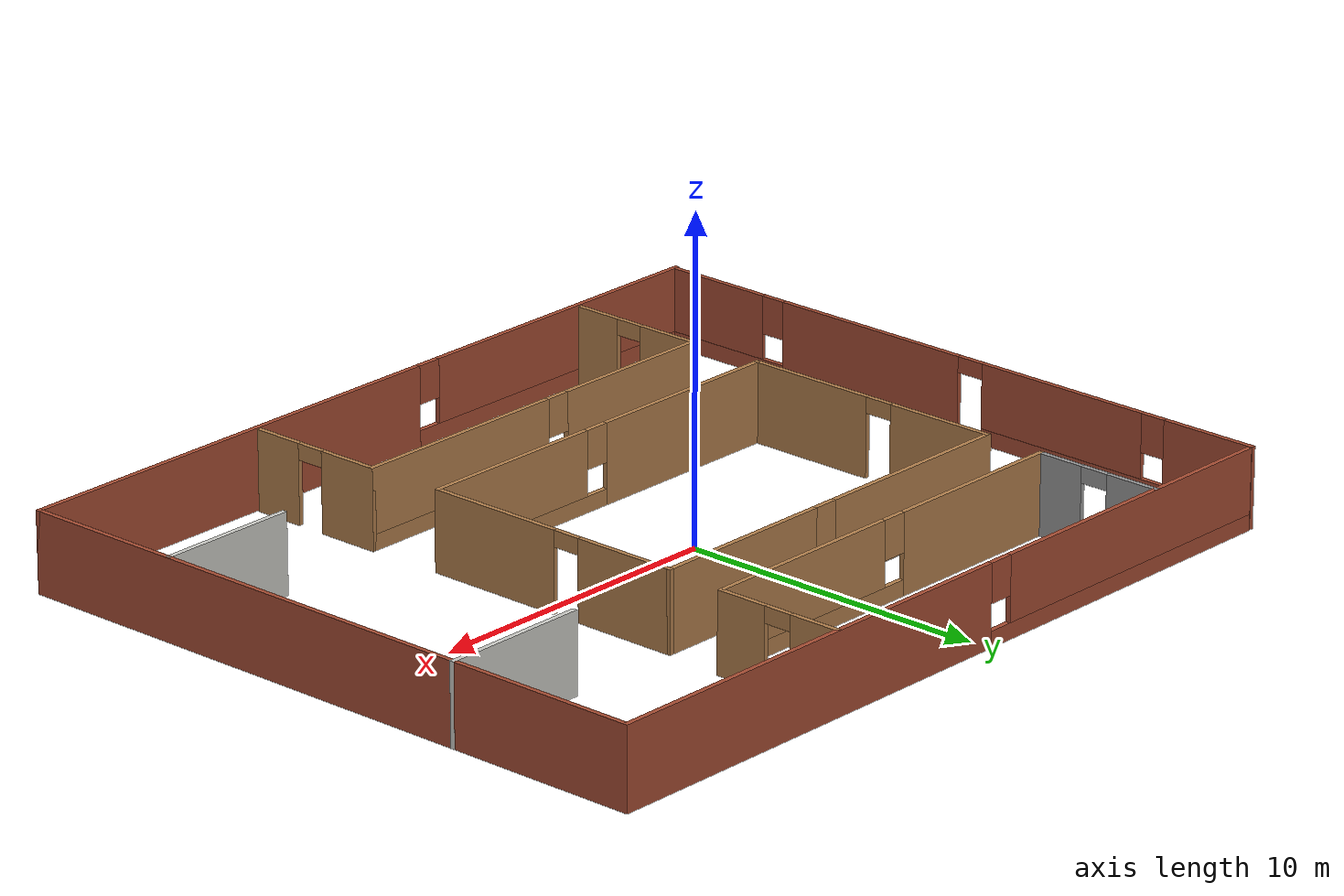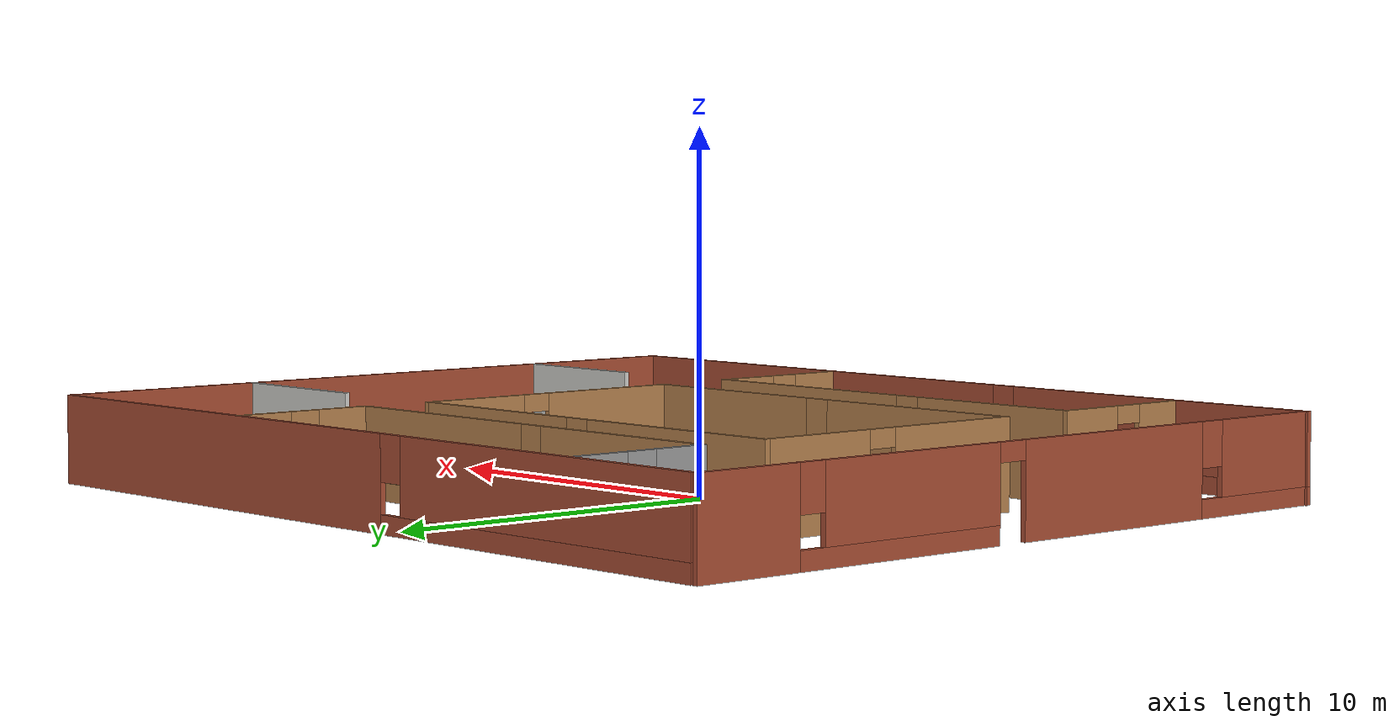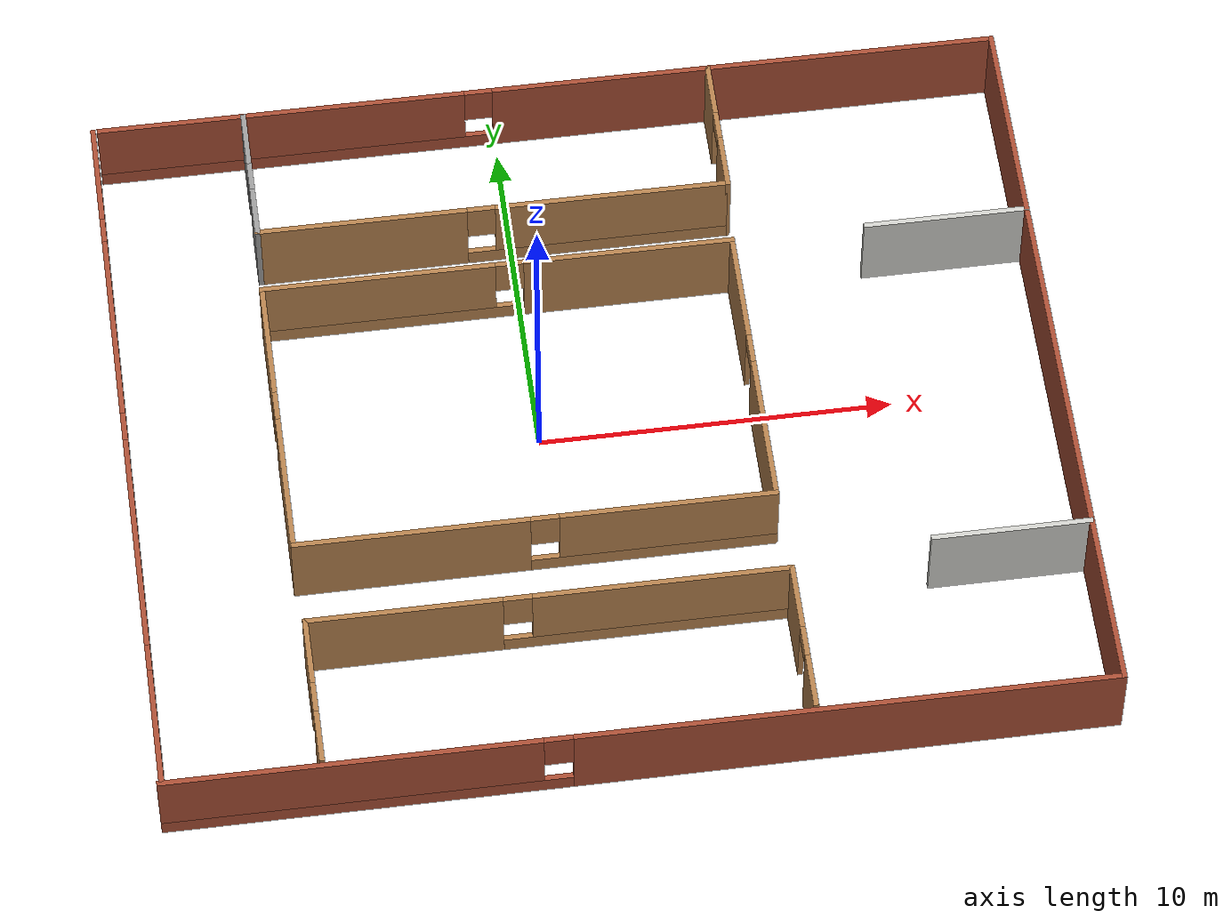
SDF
<?xml version='1.0'?>
<sdf version='1.6'>
  <model name='newworld'>
    <pose frame=''>1.44704 -0.283825 0 0 -0 0</pose>
    <link name='Wall_13'>
      <pose frame=''>4.60647 0.466552 0 0 -0 1.5708</pose>
      <visual name='Wall_13_Visual_0'>
        <pose frame=''>-2.13756 0 1.25 0 -0 0</pose>
        <geometry>
          <box>
            <size>4.47488 0.15 2.5</size>
          </box>
        </geometry>
        <material>
          <script>
            <uri>file://media/materials/scripts/gazebo.material</uri>
            <name>Gazebo/Wood</name>
          </script>
          <ambient>0.996078 0.47451 0.0196078 1</ambient>
        </material>
        <meta>
          <layer>0</layer>
        </meta>
      </visual>
      <collision name='Wall_13_Collision_0'>
        <geometry>
          <box>
            <size>4.47488 0.15 2.5</size>
          </box>
        </geometry>
        <pose frame=''>-2.13756 0 1.25 0 -0 0</pose>
      </collision>
      <visual name='Wall_13_Visual_1'>
        <pose frame=''>2.68744 0 1.25 0 -0 0</pose>
        <geometry>
          <box>
            <size>3.37512 0.15 2.5</size>
          </box>
        </geometry>
        <material>
          <script>
            <uri>file://media/materials/scripts/gazebo.material</uri>
            <name>Gazebo/Wood</name>
          </script>
          <ambient>0.996078 0.47451 0.0196078 1</ambient>
        </material>
        <meta>
          <layer>0</layer>
        </meta>
      </visual>
      <collision name='Wall_13_Collision_1'>
        <geometry>
          <box>
            <size>3.37512 0.15 2.5</size>
          </box>
        </geometry>
        <pose frame=''>2.68744 0 1.25 0 -0 0</pose>
      </collision>
      <visual name='Wall_13_Visual_2'>
        <pose frame=''>0.549876 0 2.25 0 -0 0</pose>
        <geometry>
          <box>
            <size>0.9 0.15 0.5</size>
          </box>
        </geometry>
        <material>
          <script>
            <uri>file://media/materials/scripts/gazebo.material</uri>
            <name>Gazebo/Wood</name>
          </script>
          <ambient>0.996078 0.47451 0.0196078 1</ambient>
        </material>
        <meta>
          <layer>0</layer>
        </meta>
      </visual>
      <collision name='Wall_13_Collision_2'>
        <geometry>
          <box>
            <size>0.9 0.15 0.5</size>
          </box>
        </geometry>
        <pose frame=''>0.549876 0 2.25 0 -0 0</pose>
      </collision>
    </link>
    <link name='Wall_14'>
      <pose frame=''>-2.06853 4.76655 0 0 -0 3.14159</pose>
      <visual name='Wall_14_Visual_0'>
        <pose frame=''>-3.73997 0 1.25 0 -0 0</pose>
        <geometry>
          <box>
            <size>6.02005 0.15 2.5</size>
          </box>
        </geometry>
        <material>
          <script>
            <uri>file://media/materials/scripts/gazebo.material</uri>
            <name>Gazebo/Wood</name>
          </script>
          <ambient>0.996078 0.47451 0.0196078 1</ambient>
        </material>
        <meta>
          <layer>0</layer>
        </meta>
      </visual>
      <collision name='Wall_14_Collision_0'>
        <geometry>
          <box>
            <size>6.02005 0.15 2.5</size>
          </box>
        </geometry>
        <pose frame=''>-3.73997 0 1.25 0 -0 0</pose>
      </collision>
      <visual name='Wall_14_Visual_1'>
        <pose frame=''>3.01003 0 0.25 0 -0 0</pose>
        <geometry>
          <box>
            <size>7.47995 0.15 0.5</size>
          </box>
        </geometry>
        <material>
          <script>
            <uri>file://media/materials/scripts/gazebo.material</uri>
            <name>Gazebo/Wood</name>
          </script>
          <ambient>0.996078 0.47451 0.0196078 1</ambient>
        </material>
        <meta>
          <layer>0</layer>
        </meta>
      </visual>
      <collision name='Wall_14_Collision_1'>
        <geometry>
          <box>
            <size>7.47995 0.15 0.5</size>
          </box>
        </geometry>
        <pose frame=''>3.01003 0 0.25 0 -0 0</pose>
      </collision>
      <visual name='Wall_14_Visual_2'>
        <pose frame=''>3.41003 0 1.5 0 -0 0</pose>
        <geometry>
          <box>
            <size>6.67995 0.15 2</size>
          </box>
        </geometry>
        <material>
          <script>
            <uri>file://media/materials/scripts/gazebo.material</uri>
            <name>Gazebo/Wood</name>
          </script>
          <ambient>0.996078 0.47451 0.0196078 1</ambient>
        </material>
        <meta>
          <layer>0</layer>
        </meta>
      </visual>
      <collision name='Wall_14_Collision_2'>
        <geometry>
          <box>
            <size>6.67995 0.15 2</size>
          </box>
        </geometry>
        <pose frame=''>3.41003 0 1.5 0 -0 0</pose>
      </collision>
      <visual name='Wall_14_Visual_3'>
        <pose frame=''>-0.329949 0 1.9 0 -0 0</pose>
        <geometry>
          <box>
            <size>0.8 0.15 1.2</size>
          </box>
        </geometry>
        <material>
          <script>
            <uri>file://media/materials/scripts/gazebo.material</uri>
            <name>Gazebo/Wood</name>
          </script>
          <ambient>0.996078 0.47451 0.0196078 1</ambient>
        </material>
        <meta>
          <layer>0</layer>
        </meta>
      </visual>
      <collision name='Wall_14_Collision_3'>
        <geometry>
          <box>
            <size>0.8 0.15 1.2</size>
          </box>
        </geometry>
        <pose frame=''>-0.329949 0 1.9 0 -0 0</pose>
      </collision>
    </link>
    <link name='Wall_2'>
      <collision name='Wall_2_Collision'>
        <geometry>
          <box>
            <size>21.8915 0.15 2.5</size>
          </box>
        </geometry>
        <pose frame=''>0 0 1.25 0 -0 0</pose>
      </collision>
      <visual name='Wall_2_Visual'>
        <pose frame=''>0 0 1.25 0 -0 0</pose>
        <geometry>
          <box>
            <size>21.8915 0.15 2.5</size>
          </box>
        </geometry>
        <material>
          <script>
            <uri>file://media/materials/scripts/gazebo.material</uri>
            <name>Gazebo/Bricks</name>
          </script>
          <ambient>1 1 1 1</ambient>
        </material>
        <meta>
          <layer>0</layer>
        </meta>
      </visual>
      <pose frame=''>13.0496 0 0 0 0 -1.5708</pose>
    </link>
    <link name='Wall_21'>
      <pose frame=''>-8.67277 -8.48349 0 0 -0 1.5708</pose>
      <visual name='Wall_21_Visual_0'>
        <pose frame=''>-1.47222 0 1.25 0 -0 0</pose>
        <geometry>
          <box>
            <size>1.55555 0.15 2.5</size>
          </box>
        </geometry>
        <material>
          <script>
            <uri>file://media/materials/scripts/gazebo.material</uri>
            <name>Gazebo/Wood</name>
          </script>
          <ambient>1 1 1 1</ambient>
        </material>
        <meta>
          <layer>0</layer>
        </meta>
      </visual>
      <collision name='Wall_21_Collision_0'>
        <geometry>
          <box>
            <size>1.55555 0.15 2.5</size>
          </box>
        </geometry>
        <pose frame=''>-1.47222 0 1.25 0 -0 0</pose>
      </collision>
      <visual name='Wall_21_Visual_1'>
        <pose frame=''>1.22778 0 1.25 0 -0 0</pose>
        <geometry>
          <box>
            <size>2.04445 0.15 2.5</size>
          </box>
        </geometry>
        <material>
          <script>
            <uri>file://media/materials/scripts/gazebo.material</uri>
            <name>Gazebo/Wood</name>
          </script>
          <ambient>1 1 1 1</ambient>
        </material>
        <meta>
          <layer>0</layer>
        </meta>
      </visual>
      <collision name='Wall_21_Collision_1'>
        <geometry>
          <box>
            <size>2.04445 0.15 2.5</size>
          </box>
        </geometry>
        <pose frame=''>1.22778 0 1.25 0 -0 0</pose>
      </collision>
      <visual name='Wall_21_Visual_2'>
        <pose frame=''>-0.244446 0 2.25 0 -0 0</pose>
        <geometry>
          <box>
            <size>0.9 0.15 0.5</size>
          </box>
        </geometry>
        <material>
          <script>
            <uri>file://media/materials/scripts/gazebo.material</uri>
            <name>Gazebo/Wood</name>
          </script>
          <ambient>1 1 1 1</ambient>
        </material>
        <meta>
          <layer>0</layer>
        </meta>
      </visual>
      <collision name='Wall_21_Collision_2'>
        <geometry>
          <box>
            <size>0.9 0.15 0.5</size>
          </box>
        </geometry>
        <pose frame=''>-0.244446 0 2.25 0 -0 0</pose>
      </collision>
    </link>
    <link name='Wall_22'>
      <pose frame=''>-1.99777 -6.30849 0 0 -0 0</pose>
      <visual name='Wall_22_Visual_0'>
        <pose frame=''>-4.01146 0 1.25 0 -0 0</pose>
        <geometry>
          <box>
            <size>5.47708 0.15 2.5</size>
          </box>
        </geometry>
        <material>
          <script>
            <uri>file://media/materials/scripts/gazebo.material</uri>
            <name>Gazebo/Wood</name>
          </script>
          <ambient>1 1 1 1</ambient>
        </material>
        <meta>
          <layer>0</layer>
        </meta>
      </visual>
      <collision name='Wall_22_Collision_0'>
        <geometry>
          <box>
            <size>5.47708 0.15 2.5</size>
          </box>
        </geometry>
        <pose frame=''>-4.01146 0 1.25 0 -0 0</pose>
      </collision>
      <visual name='Wall_22_Visual_1'>
        <pose frame=''>2.73854 0 0.25 0 -0 0</pose>
        <geometry>
          <box>
            <size>8.02292 0.15 0.5</size>
          </box>
        </geometry>
        <material>
          <script>
            <uri>file://media/materials/scripts/gazebo.material</uri>
            <name>Gazebo/Wood</name>
          </script>
          <ambient>1 1 1 1</ambient>
        </material>
        <meta>
          <layer>0</layer>
        </meta>
      </visual>
      <collision name='Wall_22_Collision_1'>
        <geometry>
          <box>
            <size>8.02292 0.15 0.5</size>
          </box>
        </geometry>
        <pose frame=''>2.73854 0 0.25 0 -0 0</pose>
      </collision>
      <visual name='Wall_22_Visual_2'>
        <pose frame=''>3.13854 0 1.5 0 -0 0</pose>
        <geometry>
          <box>
            <size>7.22292 0.15 2</size>
          </box>
        </geometry>
        <material>
          <script>
            <uri>file://media/materials/scripts/gazebo.material</uri>
            <name>Gazebo/Wood</name>
          </script>
          <ambient>1 1 1 1</ambient>
        </material>
        <meta>
          <layer>0</layer>
        </meta>
      </visual>
      <collision name='Wall_22_Collision_2'>
        <geometry>
          <box>
            <size>7.22292 0.15 2</size>
          </box>
        </geometry>
        <pose frame=''>3.13854 0 1.5 0 -0 0</pose>
      </collision>
      <visual name='Wall_22_Visual_3'>
        <pose frame=''>-0.872921 0 1.9 0 -0 0</pose>
        <geometry>
          <box>
            <size>0.8 0.15 1.2</size>
          </box>
        </geometry>
        <material>
          <script>
            <uri>file://media/materials/scripts/gazebo.material</uri>
            <name>Gazebo/Wood</name>
          </script>
          <ambient>1 1 1 1</ambient>
        </material>
        <meta>
          <layer>0</layer>
        </meta>
      </visual>
      <collision name='Wall_22_Collision_3'>
        <geometry>
          <box>
            <size>0.8 0.15 1.2</size>
          </box>
        </geometry>
        <pose frame=''>-0.872921 0 1.9 0 -0 0</pose>
      </collision>
    </link>
    <link name='Wall_23'>
      <pose frame=''>4.67723 -8.48349 0 0 0 -1.5708</pose>
      <visual name='Wall_23_Visual_0'>
        <pose frame=''>-1.2531 0 1.25 0 -0 0</pose>
        <geometry>
          <box>
            <size>1.9938 0.15 2.5</size>
          </box>
        </geometry>
        <material>
          <script>
            <uri>file://media/materials/scripts/gazebo.material</uri>
            <name>Gazebo/Wood</name>
          </script>
          <ambient>1 1 1 1</ambient>
        </material>
        <meta>
          <layer>0</layer>
        </meta>
      </visual>
      <collision name='Wall_23_Collision_0'>
        <geometry>
          <box>
            <size>1.9938 0.15 2.5</size>
          </box>
        </geometry>
        <pose frame=''>-1.2531 0 1.25 0 -0 0</pose>
      </collision>
      <visual name='Wall_23_Visual_1'>
        <pose frame=''>1.4469 0 1.25 0 -0 0</pose>
        <geometry>
          <box>
            <size>1.6062 0.15 2.5</size>
          </box>
        </geometry>
        <material>
          <script>
            <uri>file://media/materials/scripts/gazebo.material</uri>
            <name>Gazebo/Wood</name>
          </script>
          <ambient>1 1 1 1</ambient>
        </material>
        <meta>
          <layer>0</layer>
        </meta>
      </visual>
      <collision name='Wall_23_Collision_1'>
        <geometry>
          <box>
            <size>1.6062 0.15 2.5</size>
          </box>
        </geometry>
        <pose frame=''>1.4469 0 1.25 0 -0 0</pose>
      </collision>
      <visual name='Wall_23_Visual_2'>
        <pose frame=''>0.193803 0 2.25 0 -0 0</pose>
        <geometry>
          <box>
            <size>0.9 0.15 0.5</size>
          </box>
        </geometry>
        <material>
          <script>
            <uri>file://media/materials/scripts/gazebo.material</uri>
            <name>Gazebo/Wood</name>
          </script>
          <ambient>1 1 1 1</ambient>
        </material>
        <meta>
          <layer>0</layer>
        </meta>
      </visual>
      <collision name='Wall_23_Collision_2'>
        <geometry>
          <box>
            <size>0.9 0.15 0.5</size>
          </box>
        </geometry>
        <pose frame=''>0.193803 0 2.25 0 -0 0</pose>
      </collision>
    </link>
    <link name='Wall_25'>
      <pose frame=''>-8.67277 8.80166 0 0 0 -1.5708</pose>
      <visual name='Wall_25_Visual_0'>
        <pose frame=''>-1.25114 0 1.25 0 -0 0</pose>
        <geometry>
          <box>
            <size>1.74771 0.15 2.5</size>
          </box>
        </geometry>
        <material>
          <script>
            <uri>file://media/materials/scripts/gazebo.material</uri>
            <name>Gazebo/Grey</name>
          </script>
          <ambient>1 1 1 1</ambient>
        </material>
        <meta>
          <layer>0</layer>
        </meta>
      </visual>
      <collision name='Wall_25_Collision_0'>
        <geometry>
          <box>
            <size>1.74771 0.15 2.5</size>
          </box>
        </geometry>
        <pose frame=''>-1.25114 0 1.25 0 -0 0</pose>
      </collision>
      <visual name='Wall_25_Visual_1'>
        <pose frame=''>1.32386 0 1.25 0 -0 0</pose>
        <geometry>
          <box>
            <size>1.60229 0.15 2.5</size>
          </box>
        </geometry>
        <material>
          <script>
            <uri>file://media/materials/scripts/gazebo.material</uri>
            <name>Gazebo/Grey</name>
          </script>
          <ambient>1 1 1 1</ambient>
        </material>
        <meta>
          <layer>0</layer>
        </meta>
      </visual>
      <collision name='Wall_25_Collision_1'>
        <geometry>
          <box>
            <size>1.60229 0.15 2.5</size>
          </box>
        </geometry>
        <pose frame=''>1.32386 0 1.25 0 -0 0</pose>
      </collision>
      <visual name='Wall_25_Visual_2'>
        <pose frame=''>0.072712 0 2.25 0 -0 0</pose>
        <geometry>
          <box>
            <size>0.9 0.15 0.5</size>
          </box>
        </geometry>
        <material>
          <script>
            <uri>file://media/materials/scripts/gazebo.material</uri>
            <name>Gazebo/Grey</name>
          </script>
          <ambient>1 1 1 1</ambient>
        </material>
        <meta>
          <layer>0</layer>
        </meta>
      </visual>
      <collision name='Wall_25_Collision_2'>
        <geometry>
          <box>
            <size>0.9 0.15 0.5</size>
          </box>
        </geometry>
        <pose frame=''>0.072712 0 2.25 0 -0 0</pose>
      </collision>
    </link>
    <link name='Wall_34'>
      <pose frame=''>-1.99777 6.75166 0 0 -0 0</pose>
      <visual name='Wall_34_Visual_0'>
        <pose frame=''>-3.72843 0 1.25 0 -0 0</pose>
        <geometry>
          <box>
            <size>6.04314 0.15 2.5</size>
          </box>
        </geometry>
        <material>
          <script>
            <uri>file://media/materials/scripts/gazebo.material</uri>
            <name>Gazebo/Wood</name>
          </script>
          <ambient>1 1 1 1</ambient>
        </material>
        <meta>
          <layer>0</layer>
        </meta>
      </visual>
      <collision name='Wall_34_Collision_0'>
        <geometry>
          <box>
            <size>6.04314 0.15 2.5</size>
          </box>
        </geometry>
        <pose frame=''>-3.72843 0 1.25 0 -0 0</pose>
      </collision>
      <visual name='Wall_34_Visual_1'>
        <pose frame=''>3.02157 0 0.25 0 -0 0</pose>
        <geometry>
          <box>
            <size>7.45686 0.15 0.5</size>
          </box>
        </geometry>
        <material>
          <script>
            <uri>file://media/materials/scripts/gazebo.material</uri>
            <name>Gazebo/Wood</name>
          </script>
          <ambient>1 1 1 1</ambient>
        </material>
        <meta>
          <layer>0</layer>
        </meta>
      </visual>
      <collision name='Wall_34_Collision_1'>
        <geometry>
          <box>
            <size>7.45686 0.15 0.5</size>
          </box>
        </geometry>
        <pose frame=''>3.02157 0 0.25 0 -0 0</pose>
      </collision>
      <visual name='Wall_34_Visual_2'>
        <pose frame=''>3.42157 0 1.5 0 -0 0</pose>
        <geometry>
          <box>
            <size>6.65686 0.15 2</size>
          </box>
        </geometry>
        <material>
          <script>
            <uri>file://media/materials/scripts/gazebo.material</uri>
            <name>Gazebo/Wood</name>
          </script>
          <ambient>1 1 1 1</ambient>
        </material>
        <meta>
          <layer>0</layer>
        </meta>
      </visual>
      <collision name='Wall_34_Collision_2'>
        <geometry>
          <box>
            <size>6.65686 0.15 2</size>
          </box>
        </geometry>
        <pose frame=''>3.42157 0 1.5 0 -0 0</pose>
      </collision>
      <visual name='Wall_34_Visual_3'>
        <pose frame=''>-0.306865 0 1.9 0 -0 0</pose>
        <geometry>
          <box>
            <size>0.8 0.15 1.2</size>
          </box>
        </geometry>
        <material>
          <script>
            <uri>file://media/materials/scripts/gazebo.material</uri>
            <name>Gazebo/Wood</name>
          </script>
          <ambient>1 1 1 1</ambient>
        </material>
        <meta>
          <layer>0</layer>
        </meta>
      </visual>
      <collision name='Wall_34_Collision_3'>
        <geometry>
          <box>
            <size>0.8 0.15 1.2</size>
          </box>
        </geometry>
        <pose frame=''>-0.306865 0 1.9 0 -0 0</pose>
      </collision>
    </link>
    <link name='Wall_38'>
      <pose frame=''>4.77107 8.80166 0 0 0 -1.5708</pose>
      <visual name='Wall_38_Visual_0'>
        <pose frame=''>-1.28652 0 1.25 0 -0 0</pose>
        <geometry>
          <box>
            <size>1.67695 0.15 2.5</size>
          </box>
        </geometry>
        <material>
          <script>
            <uri>file://media/materials/scripts/gazebo.material</uri>
            <name>Gazebo/Wood</name>
          </script>
          <ambient>1 1 1 1</ambient>
        </material>
        <meta>
          <layer>0</layer>
        </meta>
      </visual>
      <collision name='Wall_38_Collision_0'>
        <geometry>
          <box>
            <size>1.67695 0.15 2.5</size>
          </box>
        </geometry>
        <pose frame=''>-1.28652 0 1.25 0 -0 0</pose>
      </collision>
      <visual name='Wall_38_Visual_1'>
        <pose frame=''>1.28848 0 1.25 0 -0 0</pose>
        <geometry>
          <box>
            <size>1.67304 0.15 2.5</size>
          </box>
        </geometry>
        <material>
          <script>
            <uri>file://media/materials/scripts/gazebo.material</uri>
            <name>Gazebo/Wood</name>
          </script>
          <ambient>1 1 1 1</ambient>
        </material>
        <meta>
          <layer>0</layer>
        </meta>
      </visual>
      <collision name='Wall_38_Collision_1'>
        <geometry>
          <box>
            <size>1.67304 0.15 2.5</size>
          </box>
        </geometry>
        <pose frame=''>1.28848 0 1.25 0 -0 0</pose>
      </collision>
      <visual name='Wall_38_Visual_2'>
        <pose frame=''>0.001955 0 2.25 0 -0 0</pose>
        <geometry>
          <box>
            <size>0.9 0.15 0.5</size>
          </box>
        </geometry>
        <material>
          <script>
            <uri>file://media/materials/scripts/gazebo.material</uri>
            <name>Gazebo/Wood</name>
          </script>
          <ambient>1 1 1 1</ambient>
        </material>
        <meta>
          <layer>0</layer>
        </meta>
      </visual>
      <collision name='Wall_38_Collision_2'>
        <geometry>
          <box>
            <size>0.9 0.15 0.5</size>
          </box>
        </geometry>
        <pose frame=''>0.001955 0 2.25 0 -0 0</pose>
      </collision>
    </link>
    <link name='Wall_40'>
      <collision name='Wall_40_Collision'>
        <geometry>
          <box>
            <size>4.75 0.15 2.5</size>
          </box>
        </geometry>
        <pose frame=''>0 0 1.25 0 -0 0</pose>
      </collision>
      <visual name='Wall_40_Visual'>
        <pose frame=''>0 0 1.25 0 -0 0</pose>
        <geometry>
          <box>
            <size>4.75 0.15 2.5</size>
          </box>
        </geometry>
        <material>
          <script>
            <uri>file://media/materials/scripts/gazebo.material</uri>
            <name>Gazebo/CeilingTiled</name>
          </script>
          <ambient>1 1 1 1</ambient>
        </material>
        <meta>
          <layer>0</layer>
        </meta>
      </visual>
      <pose frame=''>10.7504 4.76655 0 0 -0 0</pose>
    </link>
    <link name='Wall_44'>
      <collision name='Wall_44_Collision'>
        <geometry>
          <box>
            <size>4.5 0.15 2.5</size>
          </box>
        </geometry>
        <pose frame=''>0 0 1.25 0 -0 0</pose>
      </collision>
      <visual name='Wall_44_Visual'>
        <pose frame=''>0 0 1.25 0 -0 0</pose>
        <geometry>
          <box>
            <size>4.5 0.15 2.5</size>
          </box>
        </geometry>
        <material>
          <script>
            <uri>file://media/materials/scripts/gazebo.material</uri>
            <name>Gazebo/CeilingTiled</name>
          </script>
          <ambient>1 1 1 1</ambient>
        </material>
        <meta>
          <layer>0</layer>
        </meta>
      </visual>
      <pose frame=''>10.8377 -5.84701 0 0 -0 0</pose>
    </link>
    <link name='Wall_46'>
      <pose frame=''>-12.989 0.051659 0 0 0 -1.5708</pose>
      <visual name='Wall_46_Visual_0'>
        <pose frame=''>-9.30395 0 1.25 0 -0 0</pose>
        <geometry>
          <box>
            <size>3.1421 0.15 2.5</size>
          </box>
        </geometry>
        <material>
          <script>
            <uri>file://media/materials/scripts/gazebo.material</uri>
            <name>Gazebo/Bricks</name>
          </script>
          <ambient>1 1 1 1</ambient>
        </material>
        <meta>
          <layer>0</layer>
        </meta>
      </visual>
      <collision name='Wall_46_Collision_0'>
        <geometry>
          <box>
            <size>3.1421 0.15 2.5</size>
          </box>
        </geometry>
        <pose frame=''>-9.30395 0 1.25 0 -0 0</pose>
      </collision>
      <visual name='Wall_46_Visual_1'>
        <pose frame=''>3.19952 0 1.25 0 -0 0</pose>
        <geometry>
          <box>
            <size>6.721 0.15 2.5</size>
          </box>
        </geometry>
        <material>
          <script>
            <uri>file://media/materials/scripts/gazebo.material</uri>
            <name>Gazebo/Bricks</name>
          </script>
          <ambient>1 1 1 1</ambient>
        </material>
        <meta>
          <layer>0</layer>
        </meta>
      </visual>
      <collision name='Wall_46_Collision_1'>
        <geometry>
          <box>
            <size>6.721 0.15 2.5</size>
          </box>
        </geometry>
        <pose frame=''>3.19952 0 1.25 0 -0 0</pose>
      </collision>
      <visual name='Wall_46_Visual_2'>
        <pose frame=''>-4.39694 0 0.25 0 -0 0</pose>
        <geometry>
          <box>
            <size>6.67192 0.15 0.5</size>
          </box>
        </geometry>
        <material>
          <script>
            <uri>file://media/materials/scripts/gazebo.material</uri>
            <name>Gazebo/Bricks</name>
          </script>
          <ambient>1 1 1 1</ambient>
        </material>
        <meta>
          <layer>0</layer>
        </meta>
      </visual>
      <collision name='Wall_46_Collision_2'>
        <geometry>
          <box>
            <size>6.67192 0.15 0.5</size>
          </box>
        </geometry>
        <pose frame=''>-4.39694 0 0.25 0 -0 0</pose>
      </collision>
      <visual name='Wall_46_Visual_3'>
        <pose frame=''>8.71751 0 0.25 0 -0 0</pose>
        <geometry>
          <box>
            <size>4.31498 0.15 0.5</size>
          </box>
        </geometry>
        <material>
          <script>
            <uri>file://media/materials/scripts/gazebo.material</uri>
            <name>Gazebo/Bricks</name>
          </script>
          <ambient>1 1 1 1</ambient>
        </material>
        <meta>
          <layer>0</layer>
        </meta>
      </visual>
      <collision name='Wall_46_Collision_3'>
        <geometry>
          <box>
            <size>4.31498 0.15 0.5</size>
          </box>
        </geometry>
        <pose frame=''>8.71751 0 0.25 0 -0 0</pose>
      </collision>
      <visual name='Wall_46_Visual_4'>
        <pose frame=''>-3.99694 0 1.5 0 -0 0</pose>
        <geometry>
          <box>
            <size>5.87192 0.15 2</size>
          </box>
        </geometry>
        <material>
          <script>
            <uri>file://media/materials/scripts/gazebo.material</uri>
            <name>Gazebo/Bricks</name>
          </script>
          <ambient>1 1 1 1</ambient>
        </material>
        <meta>
          <layer>0</layer>
        </meta>
      </visual>
      <collision name='Wall_46_Collision_4'>
        <geometry>
          <box>
            <size>5.87192 0.15 2</size>
          </box>
        </geometry>
        <pose frame=''>-3.99694 0 1.5 0 -0 0</pose>
      </collision>
      <visual name='Wall_46_Visual_5'>
        <pose frame=''>-3.99694 0 1.5 0 -0 0</pose>
        <geometry>
          <box>
            <size>5.87192 0.15 2</size>
          </box>
        </geometry>
        <material>
          <script>
            <uri>file://media/materials/scripts/gazebo.material</uri>
            <name>Gazebo/Bricks</name>
          </script>
          <ambient>1 1 1 1</ambient>
        </material>
        <meta>
          <layer>0</layer>
        </meta>
      </visual>
      <collision name='Wall_46_Collision_5'>
        <geometry>
          <box>
            <size>5.87192 0.15 2</size>
          </box>
        </geometry>
        <pose frame=''>-3.99694 0 1.5 0 -0 0</pose>
      </collision>
      <visual name='Wall_46_Visual_6'>
        <pose frame=''>9.11751 0 1.5 0 -0 0</pose>
        <geometry>
          <box>
            <size>3.51498 0.15 2</size>
          </box>
        </geometry>
        <material>
          <script>
            <uri>file://media/materials/scripts/gazebo.material</uri>
            <name>Gazebo/Bricks</name>
          </script>
          <ambient>1 1 1 1</ambient>
        </material>
        <meta>
          <layer>0</layer>
        </meta>
      </visual>
      <collision name='Wall_46_Collision_6'>
        <geometry>
          <box>
            <size>3.51498 0.15 2</size>
          </box>
        </geometry>
        <pose frame=''>9.11751 0 1.5 0 -0 0</pose>
      </collision>
      <visual name='Wall_46_Visual_7'>
        <pose frame=''>-7.3329 0 1.9 0 -0 0</pose>
        <geometry>
          <box>
            <size>0.8 0.15 1.2</size>
          </box>
        </geometry>
        <material>
          <script>
            <uri>file://media/materials/scripts/gazebo.material</uri>
            <name>Gazebo/Bricks</name>
          </script>
          <ambient>1 1 1 1</ambient>
        </material>
        <meta>
          <layer>0</layer>
        </meta>
      </visual>
      <collision name='Wall_46_Collision_7'>
        <geometry>
          <box>
            <size>0.8 0.15 1.2</size>
          </box>
        </geometry>
        <pose frame=''>-7.3329 0 1.9 0 -0 0</pose>
      </collision>
      <visual name='Wall_46_Visual_8'>
        <pose frame=''>6.96002 0 1.9 0 -0 0</pose>
        <geometry>
          <box>
            <size>0.8 0.15 1.2</size>
          </box>
        </geometry>
        <material>
          <script>
            <uri>file://media/materials/scripts/gazebo.material</uri>
            <name>Gazebo/Bricks</name>
          </script>
          <ambient>1 1 1 1</ambient>
        </material>
        <meta>
          <layer>0</layer>
        </meta>
      </visual>
      <collision name='Wall_46_Collision_8'>
        <geometry>
          <box>
            <size>0.8 0.15 1.2</size>
          </box>
        </geometry>
        <pose frame=''>6.96002 0 1.9 0 -0 0</pose>
      </collision>
      <visual name='Wall_46_Visual_9'>
        <pose frame=''>-0.610984 0 2.25 0 -0 0</pose>
        <geometry>
          <box>
            <size>0.9 0.15 0.5</size>
          </box>
        </geometry>
        <material>
          <script>
            <uri>file://media/materials/scripts/gazebo.material</uri>
            <name>Gazebo/Bricks</name>
          </script>
          <ambient>1 1 1 1</ambient>
        </material>
        <meta>
          <layer>0</layer>
        </meta>
      </visual>
      <collision name='Wall_46_Collision_9'>
        <geometry>
          <box>
            <size>0.9 0.15 0.5</size>
          </box>
        </geometry>
        <pose frame=''>-0.610984 0 2.25 0 -0 0</pose>
      </collision>
      <visual name='Wall_46_Visual_10'>
        <pose frame=''>-0.610984 0 2.25 0 -0 0</pose>
        <geometry>
          <box>
            <size>0.9 0.15 0.5</size>
          </box>
        </geometry>
        <material>
          <script>
            <uri>file://media/materials/scripts/gazebo.material</uri>
            <name>Gazebo/Bricks</name>
          </script>
          <ambient>1 1 1 1</ambient>
        </material>
        <meta>
          <layer>0</layer>
        </meta>
      </visual>
      <collision name='Wall_46_Collision_10'>
        <geometry>
          <box>
            <size>0.9 0.15 0.5</size>
          </box>
        </geometry>
        <pose frame=''>-0.610984 0 2.25 0 -0 0</pose>
      </collision>
    </link>
    <link name='Wall_49'>
      <pose frame=''>-0.000434 -10.8708 0 0 -0 3.14159</pose>
      <visual name='Wall_49_Visual_0'>
        <pose frame=''>-5.60024 0 1.25 0 -0 0</pose>
        <geometry>
          <box>
            <size>15.0495 0.15 2.5</size>
          </box>
        </geometry>
        <material>
          <script>
            <uri>file://media/materials/scripts/gazebo.material</uri>
            <name>Gazebo/Bricks</name>
          </script>
          <ambient>1 1 1 1</ambient>
        </material>
        <meta>
          <layer>0</layer>
        </meta>
      </visual>
      <collision name='Wall_49_Collision_0'>
        <geometry>
          <box>
            <size>15.0495 0.15 2.5</size>
          </box>
        </geometry>
        <pose frame=''>-5.60024 0 1.25 0 -0 0</pose>
      </collision>
      <visual name='Wall_49_Visual_1'>
        <pose frame=''>7.52476 0 0.25 0 -0 0</pose>
        <geometry>
          <box>
            <size>11.2005 0.15 0.5</size>
          </box>
        </geometry>
        <material>
          <script>
            <uri>file://media/materials/scripts/gazebo.material</uri>
            <name>Gazebo/Bricks</name>
          </script>
          <ambient>1 1 1 1</ambient>
        </material>
        <meta>
          <layer>0</layer>
        </meta>
      </visual>
      <collision name='Wall_49_Collision_1'>
        <geometry>
          <box>
            <size>11.2005 0.15 0.5</size>
          </box>
        </geometry>
        <pose frame=''>7.52476 0 0.25 0 -0 0</pose>
      </collision>
      <visual name='Wall_49_Visual_2'>
        <pose frame=''>7.92476 0 1.5 0 -0 0</pose>
        <geometry>
          <box>
            <size>10.4005 0.15 2</size>
          </box>
        </geometry>
        <material>
          <script>
            <uri>file://media/materials/scripts/gazebo.material</uri>
            <name>Gazebo/Bricks</name>
          </script>
          <ambient>1 1 1 1</ambient>
        </material>
        <meta>
          <layer>0</layer>
        </meta>
      </visual>
      <collision name='Wall_49_Collision_2'>
        <geometry>
          <box>
            <size>10.4005 0.15 2</size>
          </box>
        </geometry>
        <pose frame=''>7.92476 0 1.5 0 -0 0</pose>
      </collision>
      <visual name='Wall_49_Visual_3'>
        <pose frame=''>2.32453 0 1.9 0 -0 0</pose>
        <geometry>
          <box>
            <size>0.8 0.15 1.2</size>
          </box>
        </geometry>
        <material>
          <script>
            <uri>file://media/materials/scripts/gazebo.material</uri>
            <name>Gazebo/Bricks</name>
          </script>
          <ambient>1 1 1 1</ambient>
        </material>
        <meta>
          <layer>0</layer>
        </meta>
      </visual>
      <collision name='Wall_49_Collision_3'>
        <geometry>
          <box>
            <size>0.8 0.15 1.2</size>
          </box>
        </geometry>
        <pose frame=''>2.32453 0 1.9 0 -0 0</pose>
      </collision>
    </link>
    <link name='Wall_5'>
      <pose frame=''>-8.74353 0.466552 0 0 0 -1.5708</pose>
      <visual name='Wall_5_Visual_0'>
        <pose frame=''>-2.5813 0 1.25 0 -0 0</pose>
        <geometry>
          <box>
            <size>3.58739 0.15 2.5</size>
          </box>
        </geometry>
        <material>
          <script>
            <uri>file://media/materials/scripts/gazebo.material</uri>
            <name>Gazebo/Wood</name>
          </script>
          <ambient>0.996078 0.47451 0.0196078 1</ambient>
        </material>
        <meta>
          <layer>0</layer>
        </meta>
      </visual>
      <collision name='Wall_5_Collision_0'>
        <geometry>
          <box>
            <size>3.58739 0.15 2.5</size>
          </box>
        </geometry>
        <pose frame=''>-2.5813 0 1.25 0 -0 0</pose>
      </collision>
      <visual name='Wall_5_Visual_1'>
        <pose frame=''>2.2437 0 1.25 0 -0 0</pose>
        <geometry>
          <box>
            <size>4.2626 0.15 2.5</size>
          </box>
        </geometry>
        <material>
          <script>
            <uri>file://media/materials/scripts/gazebo.material</uri>
            <name>Gazebo/Wood</name>
          </script>
          <ambient>0.996078 0.47451 0.0196078 1</ambient>
        </material>
        <meta>
          <layer>0</layer>
        </meta>
      </visual>
      <collision name='Wall_5_Collision_1'>
        <geometry>
          <box>
            <size>4.2626 0.15 2.5</size>
          </box>
        </geometry>
        <pose frame=''>2.2437 0 1.25 0 -0 0</pose>
      </collision>
      <visual name='Wall_5_Visual_2'>
        <pose frame=''>-0.337605 0 2.25 0 -0 0</pose>
        <geometry>
          <box>
            <size>0.9 0.15 0.5</size>
          </box>
        </geometry>
        <material>
          <script>
            <uri>file://media/materials/scripts/gazebo.material</uri>
            <name>Gazebo/Wood</name>
          </script>
          <ambient>0.996078 0.47451 0.0196078 1</ambient>
        </material>
        <meta>
          <layer>0</layer>
        </meta>
      </visual>
      <collision name='Wall_5_Collision_2'>
        <geometry>
          <box>
            <size>0.9 0.15 0.5</size>
          </box>
        </geometry>
        <pose frame=''>-0.337605 0 2.25 0 -0 0</pose>
      </collision>
    </link>
    <link name='Wall_51'>
      <pose frame=''>0.124566 10.8708 0 0 -0 3.14159</pose>
      <visual name='Wall_51_Visual_0'>
        <pose frame=''>-5.68751 0 1.25 0 -0 0</pose>
        <geometry>
          <box>
            <size>14.625 0.15 2.5</size>
          </box>
        </geometry>
        <material>
          <script>
            <uri>file://media/materials/scripts/gazebo.material</uri>
            <name>Gazebo/Bricks</name>
          </script>
          <ambient>1 1 1 1</ambient>
        </material>
        <meta>
          <layer>0</layer>
        </meta>
      </visual>
      <collision name='Wall_51_Collision_0'>
        <geometry>
          <box>
            <size>14.625 0.15 2.5</size>
          </box>
        </geometry>
        <pose frame=''>-5.68751 0 1.25 0 -0 0</pose>
      </collision>
      <visual name='Wall_51_Visual_1'>
        <pose frame=''>7.31249 0 0.25 0 -0 0</pose>
        <geometry>
          <box>
            <size>11.375 0.15 0.5</size>
          </box>
        </geometry>
        <material>
          <script>
            <uri>file://media/materials/scripts/gazebo.material</uri>
            <name>Gazebo/Bricks</name>
          </script>
          <ambient>1 1 1 1</ambient>
        </material>
        <meta>
          <layer>0</layer>
        </meta>
      </visual>
      <collision name='Wall_51_Collision_1'>
        <geometry>
          <box>
            <size>11.375 0.15 0.5</size>
          </box>
        </geometry>
        <pose frame=''>7.31249 0 0.25 0 -0 0</pose>
      </collision>
      <visual name='Wall_51_Visual_2'>
        <pose frame=''>7.71249 0 1.5 0 -0 0</pose>
        <geometry>
          <box>
            <size>10.575 0.15 2</size>
          </box>
        </geometry>
        <material>
          <script>
            <uri>file://media/materials/scripts/gazebo.material</uri>
            <name>Gazebo/Bricks</name>
          </script>
          <ambient>1 1 1 1</ambient>
        </material>
        <meta>
          <layer>0</layer>
        </meta>
      </visual>
      <collision name='Wall_51_Collision_2'>
        <geometry>
          <box>
            <size>10.575 0.15 2</size>
          </box>
        </geometry>
        <pose frame=''>7.71249 0 1.5 0 -0 0</pose>
      </collision>
      <visual name='Wall_51_Visual_3'>
        <pose frame=''>2.02498 0 1.9 0 -0 0</pose>
        <geometry>
          <box>
            <size>0.8 0.15 1.2</size>
          </box>
        </geometry>
        <material>
          <script>
            <uri>file://media/materials/scripts/gazebo.material</uri>
            <name>Gazebo/Bricks</name>
          </script>
          <ambient>1 1 1 1</ambient>
        </material>
        <meta>
          <layer>0</layer>
        </meta>
      </visual>
      <collision name='Wall_51_Collision_3'>
        <geometry>
          <box>
            <size>0.8 0.15 1.2</size>
          </box>
        </geometry>
        <pose frame=''>2.02498 0 1.9 0 -0 0</pose>
      </collision>
    </link>
    <link name='Wall_6'>
      <pose frame=''>-2.06853 -3.83345 0 0 -0 0</pose>
      <visual name='Wall_6_Visual_0'>
        <pose frame=''>-3.4454 0 1.25 0 -0 0</pose>
        <geometry>
          <box>
            <size>6.60919 0.15 2.5</size>
          </box>
        </geometry>
        <material>
          <script>
            <uri>file://media/materials/scripts/gazebo.material</uri>
            <name>Gazebo/Wood</name>
          </script>
          <ambient>0.996078 0.47451 0.0196078 1</ambient>
        </material>
        <meta>
          <layer>0</layer>
        </meta>
      </visual>
      <collision name='Wall_6_Collision_0'>
        <geometry>
          <box>
            <size>6.60919 0.15 2.5</size>
          </box>
        </geometry>
        <pose frame=''>-3.4454 0 1.25 0 -0 0</pose>
      </collision>
      <visual name='Wall_6_Visual_1'>
        <pose frame=''>3.3046 0 0.25 0 -0 0</pose>
        <geometry>
          <box>
            <size>6.89081 0.15 0.5</size>
          </box>
        </geometry>
        <material>
          <script>
            <uri>file://media/materials/scripts/gazebo.material</uri>
            <name>Gazebo/Wood</name>
          </script>
          <ambient>0.996078 0.47451 0.0196078 1</ambient>
        </material>
        <meta>
          <layer>0</layer>
        </meta>
      </visual>
      <collision name='Wall_6_Collision_1'>
        <geometry>
          <box>
            <size>6.89081 0.15 0.5</size>
          </box>
        </geometry>
        <pose frame=''>3.3046 0 0.25 0 -0 0</pose>
      </collision>
      <visual name='Wall_6_Visual_2'>
        <pose frame=''>3.7046 0 1.5 0 -0 0</pose>
        <geometry>
          <box>
            <size>6.09081 0.15 2</size>
          </box>
        </geometry>
        <material>
          <script>
            <uri>file://media/materials/scripts/gazebo.material</uri>
            <name>Gazebo/Wood</name>
          </script>
          <ambient>0.996078 0.47451 0.0196078 1</ambient>
        </material>
        <meta>
          <layer>0</layer>
        </meta>
      </visual>
      <collision name='Wall_6_Collision_2'>
        <geometry>
          <box>
            <size>6.09081 0.15 2</size>
          </box>
        </geometry>
        <pose frame=''>3.7046 0 1.5 0 -0 0</pose>
      </collision>
      <visual name='Wall_6_Visual_3'>
        <pose frame=''>0.259192 0 1.9 0 -0 0</pose>
        <geometry>
          <box>
            <size>0.8 0.15 1.2</size>
          </box>
        </geometry>
        <material>
          <script>
            <uri>file://media/materials/scripts/gazebo.material</uri>
            <name>Gazebo/Wood</name>
          </script>
          <ambient>0.996078 0.47451 0.0196078 1</ambient>
        </material>
        <meta>
          <layer>0</layer>
        </meta>
      </visual>
      <collision name='Wall_6_Collision_3'>
        <geometry>
          <box>
            <size>0.8 0.15 1.2</size>
          </box>
        </geometry>
        <pose frame=''>0.259192 0 1.9 0 -0 0</pose>
      </collision>
    </link>
    <static>1</static>
  </model>
</sdf>
